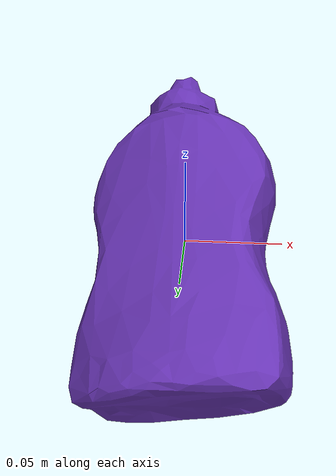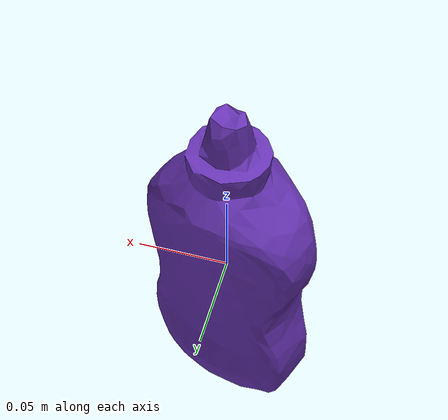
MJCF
<mujoco model="top_watertight_tiny">

  <asset>
    <mesh file="top_watertight_tiny.obj"/>
    <mesh file="top_watertight_tiny_collision_0.obj"/>
    <mesh file="top_watertight_tiny_collision_1.obj"/>
    <mesh file="top_watertight_tiny_collision_2.obj"/>
    <mesh file="top_watertight_tiny_collision_3.obj"/>
  </asset>
  <worldbody>
    <body name="top_watertight_tiny">
      <freejoint/>
      <geom solimp="0.90 0.95 0.001" solref="0.02 1.0" density="100" friction="0.95 0.4 0.3" rgba="0.4 0.2 0.7 1" mesh="top_watertight_tiny" group="2" type="mesh" contype="0" conaffinity="0"/>
      <geom solimp="0.90 0.95 0.001" solref="0.02 1.0" density="100" friction="0.95 0.4 0.3" mesh="top_watertight_tiny_collision_0" rgba="0.11127705710485059 0.5932130889447639 0.7049554705885147 1" group="3" type="mesh"/>
      <geom solimp="0.90 0.95 0.001" solref="0.02 1.0" density="100" friction="0.95 0.4 0.3" mesh="top_watertight_tiny_collision_1" rgba="0.43446795066340405 0.22562755249317545 0.04591748105755222 1" group="3" type="mesh"/>
      <geom solimp="0.90 0.95 0.001" solref="0.02 1.0" density="100" friction="0.95 0.4 0.3" mesh="top_watertight_tiny_collision_2" rgba="0.05847299506245718 0.8785227634908408 0.4486370323840775 1" group="3" type="mesh"/>
      <geom solimp="0.90 0.95 0.001" solref="0.02 1.0" density="100" friction="0.95 0.4 0.3" mesh="top_watertight_tiny_collision_3" rgba="0.44731768275579564 0.7049056336208389 0.9792257915180834 1" group="3" type="mesh"/>
    </body>
  </worldbody>
</mujoco>
